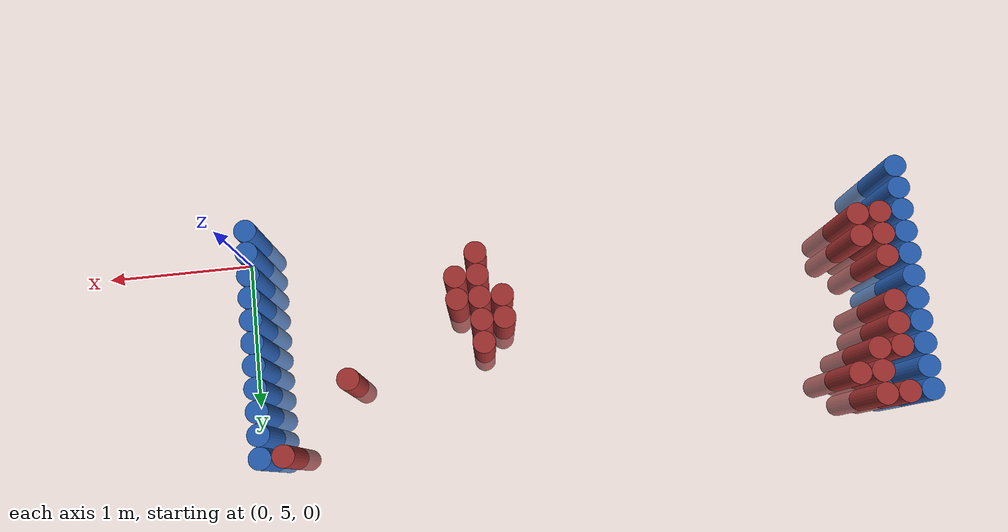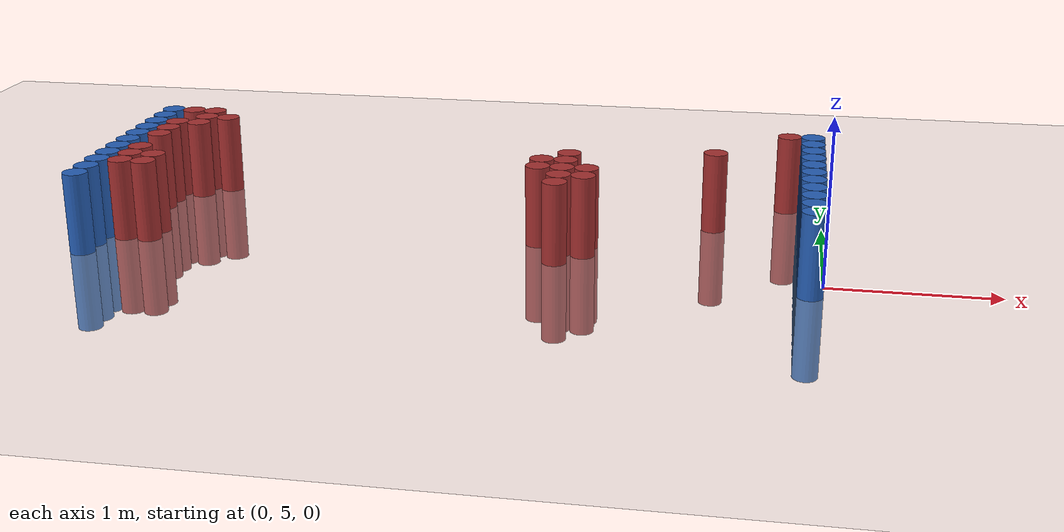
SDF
<sdf version="1.6">
 <world name="default">
  <model name="ground_plane">
   <static>1</static>
   <link name="link">
    <collision name="collision">
     <geometry><plane><normal>0 0 1</normal><size>100 100</size></plane></geometry>
     <surface><friction><ode><mu>100</mu><mu2>50</mu2></ode></friction></surface>
    </collision>
    <visual name="visual">
     <cast_shadows>0</cast_shadows>
     <geometry><plane><normal>0 0 1</normal><size>100 100</size></plane></geometry>
     <material>
      <script><uri>file://media/materials/scripts/gazebo.material</uri><name>Gazebo/Grey</name></script>
     </material>
    </visual>
   </link>
  </model>
  <model name="unit_cylinder_92">
   <static>1</static>
   <pose>-0.075000 4.875000 0.000000 0.000000 0.000000 0.000000</pose>
   <link name="link">
    <inertial>
     <mass>1</mass>
     <inertia><ixx>0.145833</ixx><ixy>0</ixy><ixz>0</ixz><iyy>0.145833</iyy><iyz>0</iyz><izz>0.125</izz></inertia>
    </inertial>
    <collision name="collision">
     <geometry><cylinder><radius>0.075000</radius><length>1</length></cylinder></geometry>
    </collision>
    <visual name="visual">
     <geometry><cylinder><radius>0.075000</radius><length>1</length></cylinder></geometry>
     <material>
      <ambient>0.152000 0.379000 0.720000 1</ambient>
      <diffuse>0.152000 0.379000 0.720000 1</diffuse>
     </material>
     <material>
      <script><name>Gazebo/Grey</name><uri>file://media/materials/scripts/gazebo.material</uri></script>
     </material>
    </visual>
   </link>
  </model>
  <model name="unit_cylinder_93">
   <static>1</static>
   <pose>-4.425000 4.875000 0.000000 0.000000 0.000000 0.000000</pose>
   <link name="link">
    <inertial>
     <mass>1</mass>
     <inertia><ixx>0.145833</ixx><ixy>0</ixy><ixz>0</ixz><iyy>0.145833</iyy><iyz>0</iyz><izz>0.125</izz></inertia>
    </inertial>
    <collision name="collision">
     <geometry><cylinder><radius>0.075000</radius><length>1</length></cylinder></geometry>
    </collision>
    <visual name="visual">
     <geometry><cylinder><radius>0.075000</radius><length>1</length></cylinder></geometry>
     <material>
      <ambient>0.152000 0.379000 0.720000 1</ambient>
      <diffuse>0.152000 0.379000 0.720000 1</diffuse>
     </material>
     <material>
      <script><name>Gazebo/Grey</name><uri>file://media/materials/scripts/gazebo.material</uri></script>
     </material>
    </visual>
   </link>
  </model>
  <model name="unit_cylinder_94">
   <static>1</static>
   <pose>-0.075000 5.025000 0.000000 0.000000 0.000000 0.000000</pose>
   <link name="link">
    <inertial>
     <mass>1</mass>
     <inertia><ixx>0.145833</ixx><ixy>0</ixy><ixz>0</ixz><iyy>0.145833</iyy><iyz>0</iyz><izz>0.125</izz></inertia>
    </inertial>
    <collision name="collision">
     <geometry><cylinder><radius>0.075000</radius><length>1</length></cylinder></geometry>
    </collision>
    <visual name="visual">
     <geometry><cylinder><radius>0.075000</radius><length>1</length></cylinder></geometry>
     <material>
      <ambient>0.152000 0.379000 0.720000 1</ambient>
      <diffuse>0.152000 0.379000 0.720000 1</diffuse>
     </material>
     <material>
      <script><name>Gazebo/Grey</name><uri>file://media/materials/scripts/gazebo.material</uri></script>
     </material>
    </visual>
   </link>
  </model>
  <model name="unit_cylinder_95">
   <static>1</static>
   <pose>-4.425000 5.025000 0.000000 0.000000 0.000000 0.000000</pose>
   <link name="link">
    <inertial>
     <mass>1</mass>
     <inertia><ixx>0.145833</ixx><ixy>0</ixy><ixz>0</ixz><iyy>0.145833</iyy><iyz>0</iyz><izz>0.125</izz></inertia>
    </inertial>
    <collision name="collision">
     <geometry><cylinder><radius>0.075000</radius><length>1</length></cylinder></geometry>
    </collision>
    <visual name="visual">
     <geometry><cylinder><radius>0.075000</radius><length>1</length></cylinder></geometry>
     <material>
      <ambient>0.152000 0.379000 0.720000 1</ambient>
      <diffuse>0.152000 0.379000 0.720000 1</diffuse>
     </material>
     <material>
      <script><name>Gazebo/Grey</name><uri>file://media/materials/scripts/gazebo.material</uri></script>
     </material>
    </visual>
   </link>
  </model>
  <model name="unit_cylinder_96">
   <static>1</static>
   <pose>-4.425000 5.175000 0.000000 0.000000 0.000000 0.000000</pose>
   <link name="link">
    <inertial>
     <mass>1</mass>
     <inertia><ixx>0.145833</ixx><ixy>0</ixy><ixz>0</ixz><iyy>0.145833</iyy><iyz>0</iyz><izz>0.125</izz></inertia>
    </inertial>
    <collision name="collision">
     <geometry><cylinder><radius>0.075000</radius><length>1</length></cylinder></geometry>
    </collision>
    <visual name="visual">
     <geometry><cylinder><radius>0.075000</radius><length>1</length></cylinder></geometry>
     <material>
      <ambient>0.152000 0.379000 0.720000 1</ambient>
      <diffuse>0.152000 0.379000 0.720000 1</diffuse>
     </material>
     <material>
      <script><name>Gazebo/Grey</name><uri>file://media/materials/scripts/gazebo.material</uri></script>
     </material>
    </visual>
   </link>
  </model>
  <model name="unit_cylinder_97">
   <static>1</static>
   <pose>-4.425000 5.325000 0.000000 0.000000 0.000000 0.000000</pose>
   <link name="link">
    <inertial>
     <mass>1</mass>
     <inertia><ixx>0.145833</ixx><ixy>0</ixy><ixz>0</ixz><iyy>0.145833</iyy><iyz>0</iyz><izz>0.125</izz></inertia>
    </inertial>
    <collision name="collision">
     <geometry><cylinder><radius>0.075000</radius><length>1</length></cylinder></geometry>
    </collision>
    <visual name="visual">
     <geometry><cylinder><radius>0.075000</radius><length>1</length></cylinder></geometry>
     <material>
      <ambient>0.152000 0.379000 0.720000 1</ambient>
      <diffuse>0.152000 0.379000 0.720000 1</diffuse>
     </material>
     <material>
      <script><name>Gazebo/Grey</name><uri>file://media/materials/scripts/gazebo.material</uri></script>
     </material>
    </visual>
   </link>
  </model>
  <model name="unit_cylinder_98">
   <static>1</static>
   <pose>-4.425000 5.475000 0.000000 0.000000 0.000000 0.000000</pose>
   <link name="link">
    <inertial>
     <mass>1</mass>
     <inertia><ixx>0.145833</ixx><ixy>0</ixy><ixz>0</ixz><iyy>0.145833</iyy><iyz>0</iyz><izz>0.125</izz></inertia>
    </inertial>
    <collision name="collision">
     <geometry><cylinder><radius>0.075000</radius><length>1</length></cylinder></geometry>
    </collision>
    <visual name="visual">
     <geometry><cylinder><radius>0.075000</radius><length>1</length></cylinder></geometry>
     <material>
      <ambient>0.152000 0.379000 0.720000 1</ambient>
      <diffuse>0.152000 0.379000 0.720000 1</diffuse>
     </material>
     <material>
      <script><name>Gazebo/Grey</name><uri>file://media/materials/scripts/gazebo.material</uri></script>
     </material>
    </visual>
   </link>
  </model>
  <model name="unit_cylinder_99">
   <static>1</static>
   <pose>-4.425000 5.625000 0.000000 0.000000 0.000000 0.000000</pose>
   <link name="link">
    <inertial>
     <mass>1</mass>
     <inertia><ixx>0.145833</ixx><ixy>0</ixy><ixz>0</ixz><iyy>0.145833</iyy><iyz>0</iyz><izz>0.125</izz></inertia>
    </inertial>
    <collision name="collision">
     <geometry><cylinder><radius>0.075000</radius><length>1</length></cylinder></geometry>
    </collision>
    <visual name="visual">
     <geometry><cylinder><radius>0.075000</radius><length>1</length></cylinder></geometry>
     <material>
      <ambient>0.152000 0.379000 0.720000 1</ambient>
      <diffuse>0.152000 0.379000 0.720000 1</diffuse>
     </material>
     <material>
      <script><name>Gazebo/Grey</name><uri>file://media/materials/scripts/gazebo.material</uri></script>
     </material>
    </visual>
   </link>
  </model>
  <model name="unit_cylinder_100">
   <static>1</static>
   <pose>-4.425000 5.775000 0.000000 0.000000 0.000000 0.000000</pose>
   <link name="link">
    <inertial>
     <mass>1</mass>
     <inertia><ixx>0.145833</ixx><ixy>0</ixy><ixz>0</ixz><iyy>0.145833</iyy><iyz>0</iyz><izz>0.125</izz></inertia>
    </inertial>
    <collision name="collision">
     <geometry><cylinder><radius>0.075000</radius><length>1</length></cylinder></geometry>
    </collision>
    <visual name="visual">
     <geometry><cylinder><radius>0.075000</radius><length>1</length></cylinder></geometry>
     <material>
      <ambient>0.152000 0.379000 0.720000 1</ambient>
      <diffuse>0.152000 0.379000 0.720000 1</diffuse>
     </material>
     <material>
      <script><name>Gazebo/Grey</name><uri>file://media/materials/scripts/gazebo.material</uri></script>
     </material>
    </visual>
   </link>
  </model>
  <model name="unit_cylinder_101">
   <static>1</static>
   <pose>-4.425000 5.925000 0.000000 0.000000 0.000000 0.000000</pose>
   <link name="link">
    <inertial>
     <mass>1</mass>
     <inertia><ixx>0.145833</ixx><ixy>0</ixy><ixz>0</ixz><iyy>0.145833</iyy><iyz>0</iyz><izz>0.125</izz></inertia>
    </inertial>
    <collision name="collision">
     <geometry><cylinder><radius>0.075000</radius><length>1</length></cylinder></geometry>
    </collision>
    <visual name="visual">
     <geometry><cylinder><radius>0.075000</radius><length>1</length></cylinder></geometry>
     <material>
      <ambient>0.152000 0.379000 0.720000 1</ambient>
      <diffuse>0.152000 0.379000 0.720000 1</diffuse>
     </material>
     <material>
      <script><name>Gazebo/Grey</name><uri>file://media/materials/scripts/gazebo.material</uri></script>
     </material>
    </visual>
   </link>
  </model>
  <model name="unit_cylinder_102">
   <static>1</static>
   <pose>-4.425000 6.075000 0.000000 0.000000 0.000000 0.000000</pose>
   <link name="link">
    <inertial>
     <mass>1</mass>
     <inertia><ixx>0.145833</ixx><ixy>0</ixy><ixz>0</ixz><iyy>0.145833</iyy><iyz>0</iyz><izz>0.125</izz></inertia>
    </inertial>
    <collision name="collision">
     <geometry><cylinder><radius>0.075000</radius><length>1</length></cylinder></geometry>
    </collision>
    <visual name="visual">
     <geometry><cylinder><radius>0.075000</radius><length>1</length></cylinder></geometry>
     <material>
      <ambient>0.152000 0.379000 0.720000 1</ambient>
      <diffuse>0.152000 0.379000 0.720000 1</diffuse>
     </material>
     <material>
      <script><name>Gazebo/Grey</name><uri>file://media/materials/scripts/gazebo.material</uri></script>
     </material>
    </visual>
   </link>
  </model>
  <model name="unit_cylinder_103">
   <static>1</static>
   <pose>-4.425000 6.225000 0.000000 0.000000 0.000000 0.000000</pose>
   <link name="link">
    <inertial>
     <mass>1</mass>
     <inertia><ixx>0.145833</ixx><ixy>0</ixy><ixz>0</ixz><iyy>0.145833</iyy><iyz>0</iyz><izz>0.125</izz></inertia>
    </inertial>
    <collision name="collision">
     <geometry><cylinder><radius>0.075000</radius><length>1</length></cylinder></geometry>
    </collision>
    <visual name="visual">
     <geometry><cylinder><radius>0.075000</radius><length>1</length></cylinder></geometry>
     <material>
      <ambient>0.152000 0.379000 0.720000 1</ambient>
      <diffuse>0.152000 0.379000 0.720000 1</diffuse>
     </material>
     <material>
      <script><name>Gazebo/Grey</name><uri>file://media/materials/scripts/gazebo.material</uri></script>
     </material>
    </visual>
   </link>
  </model>
  <model name="unit_cylinder_104">
   <static>1</static>
   <pose>-4.425000 6.375000 0.000000 0.000000 0.000000 0.000000</pose>
   <link name="link">
    <inertial>
     <mass>1</mass>
     <inertia><ixx>0.145833</ixx><ixy>0</ixy><ixz>0</ixz><iyy>0.145833</iyy><iyz>0</iyz><izz>0.125</izz></inertia>
    </inertial>
    <collision name="collision">
     <geometry><cylinder><radius>0.075000</radius><length>1</length></cylinder></geometry>
    </collision>
    <visual name="visual">
     <geometry><cylinder><radius>0.075000</radius><length>1</length></cylinder></geometry>
     <material>
      <ambient>0.152000 0.379000 0.720000 1</ambient>
      <diffuse>0.152000 0.379000 0.720000 1</diffuse>
     </material>
     <material>
      <script><name>Gazebo/Grey</name><uri>file://media/materials/scripts/gazebo.material</uri></script>
     </material>
    </visual>
   </link>
  </model>
  <model name="unit_cylinder_126">
   <static>1</static>
   <pose>-4.275000 5.175000 0.000000 0.000000 0.000000 0.000000</pose>
   <link name="link">
    <inertial>
     <mass>1</mass>
     <inertia><ixx>0.145833</ixx><ixy>0</ixy><ixz>0</ixz><iyy>0.145833</iyy><iyz>0</iyz><izz>0.125</izz></inertia>
    </inertial>
    <collision name="collision">
     <geometry><cylinder><radius>0.075000</radius><length>1</length></cylinder></geometry>
    </collision>
    <visual name="visual">
     <geometry><cylinder><radius>0.075000</radius><length>1</length></cylinder></geometry>
     <material>
      <ambient>0.648000 0.192000 0.192000 1</ambient>
      <diffuse>0.648000 0.192000 0.192000 1</diffuse>
     </material>
     <material>
      <script><name>Gazebo/Grey</name><uri>file://media/materials/scripts/gazebo.material</uri></script>
     </material>
    </visual>
   </link>
  </model>
  <model name="unit_cylinder_127">
   <static>1</static>
   <pose>-4.275000 5.325000 0.000000 0.000000 0.000000 0.000000</pose>
   <link name="link">
    <inertial>
     <mass>1</mass>
     <inertia><ixx>0.145833</ixx><ixy>0</ixy><ixz>0</ixz><iyy>0.145833</iyy><iyz>0</iyz><izz>0.125</izz></inertia>
    </inertial>
    <collision name="collision">
     <geometry><cylinder><radius>0.075000</radius><length>1</length></cylinder></geometry>
    </collision>
    <visual name="visual">
     <geometry><cylinder><radius>0.075000</radius><length>1</length></cylinder></geometry>
     <material>
      <ambient>0.648000 0.192000 0.192000 1</ambient>
      <diffuse>0.648000 0.192000 0.192000 1</diffuse>
     </material>
     <material>
      <script><name>Gazebo/Grey</name><uri>file://media/materials/scripts/gazebo.material</uri></script>
     </material>
    </visual>
   </link>
  </model>
  <model name="unit_cylinder_128">
   <static>1</static>
   <pose>-4.275000 5.475000 0.000000 0.000000 0.000000 0.000000</pose>
   <link name="link">
    <inertial>
     <mass>1</mass>
     <inertia><ixx>0.145833</ixx><ixy>0</ixy><ixz>0</ixz><iyy>0.145833</iyy><iyz>0</iyz><izz>0.125</izz></inertia>
    </inertial>
    <collision name="collision">
     <geometry><cylinder><radius>0.075000</radius><length>1</length></cylinder></geometry>
    </collision>
    <visual name="visual">
     <geometry><cylinder><radius>0.075000</radius><length>1</length></cylinder></geometry>
     <material>
      <ambient>0.648000 0.192000 0.192000 1</ambient>
      <diffuse>0.648000 0.192000 0.192000 1</diffuse>
     </material>
     <material>
      <script><name>Gazebo/Grey</name><uri>file://media/materials/scripts/gazebo.material</uri></script>
     </material>
    </visual>
   </link>
  </model>
  <model name="unit_cylinder_129">
   <static>1</static>
   <pose>-4.275000 5.775000 0.000000 0.000000 0.000000 0.000000</pose>
   <link name="link">
    <inertial>
     <mass>1</mass>
     <inertia><ixx>0.145833</ixx><ixy>0</ixy><ixz>0</ixz><iyy>0.145833</iyy><iyz>0</iyz><izz>0.125</izz></inertia>
    </inertial>
    <collision name="collision">
     <geometry><cylinder><radius>0.075000</radius><length>1</length></cylinder></geometry>
    </collision>
    <visual name="visual">
     <geometry><cylinder><radius>0.075000</radius><length>1</length></cylinder></geometry>
     <material>
      <ambient>0.648000 0.192000 0.192000 1</ambient>
      <diffuse>0.648000 0.192000 0.192000 1</diffuse>
     </material>
     <material>
      <script><name>Gazebo/Grey</name><uri>file://media/materials/scripts/gazebo.material</uri></script>
     </material>
    </visual>
   </link>
  </model>
  <model name="unit_cylinder_130">
   <static>1</static>
   <pose>-4.275000 5.925000 0.000000 0.000000 0.000000 0.000000</pose>
   <link name="link">
    <inertial>
     <mass>1</mass>
     <inertia><ixx>0.145833</ixx><ixy>0</ixy><ixz>0</ixz><iyy>0.145833</iyy><iyz>0</iyz><izz>0.125</izz></inertia>
    </inertial>
    <collision name="collision">
     <geometry><cylinder><radius>0.075000</radius><length>1</length></cylinder></geometry>
    </collision>
    <visual name="visual">
     <geometry><cylinder><radius>0.075000</radius><length>1</length></cylinder></geometry>
     <material>
      <ambient>0.648000 0.192000 0.192000 1</ambient>
      <diffuse>0.648000 0.192000 0.192000 1</diffuse>
     </material>
     <material>
      <script><name>Gazebo/Grey</name><uri>file://media/materials/scripts/gazebo.material</uri></script>
     </material>
    </visual>
   </link>
  </model>
  <model name="unit_cylinder_131">
   <static>1</static>
   <pose>-4.275000 6.075000 0.000000 0.000000 0.000000 0.000000</pose>
   <link name="link">
    <inertial>
     <mass>1</mass>
     <inertia><ixx>0.145833</ixx><ixy>0</ixy><ixz>0</ixz><iyy>0.145833</iyy><iyz>0</iyz><izz>0.125</izz></inertia>
    </inertial>
    <collision name="collision">
     <geometry><cylinder><radius>0.075000</radius><length>1</length></cylinder></geometry>
    </collision>
    <visual name="visual">
     <geometry><cylinder><radius>0.075000</radius><length>1</length></cylinder></geometry>
     <material>
      <ambient>0.648000 0.192000 0.192000 1</ambient>
      <diffuse>0.648000 0.192000 0.192000 1</diffuse>
     </material>
     <material>
      <script><name>Gazebo/Grey</name><uri>file://media/materials/scripts/gazebo.material</uri></script>
     </material>
    </visual>
   </link>
  </model>
  <model name="unit_cylinder_132">
   <static>1</static>
   <pose>-4.275000 6.375000 0.000000 0.000000 0.000000 0.000000</pose>
   <link name="link">
    <inertial>
     <mass>1</mass>
     <inertia><ixx>0.145833</ixx><ixy>0</ixy><ixz>0</ixz><iyy>0.145833</iyy><iyz>0</iyz><izz>0.125</izz></inertia>
    </inertial>
    <collision name="collision">
     <geometry><cylinder><radius>0.075000</radius><length>1</length></cylinder></geometry>
    </collision>
    <visual name="visual">
     <geometry><cylinder><radius>0.075000</radius><length>1</length></cylinder></geometry>
     <material>
      <ambient>0.648000 0.192000 0.192000 1</ambient>
      <diffuse>0.648000 0.192000 0.192000 1</diffuse>
     </material>
     <material>
      <script><name>Gazebo/Grey</name><uri>file://media/materials/scripts/gazebo.material</uri></script>
     </material>
    </visual>
   </link>
  </model>
  <model name="unit_cylinder_144">
   <static>1</static>
   <pose>-4.125000 5.175000 0.000000 0.000000 0.000000 0.000000</pose>
   <link name="link">
    <inertial>
     <mass>1</mass>
     <inertia><ixx>0.145833</ixx><ixy>0</ixy><ixz>0</ixz><iyy>0.145833</iyy><iyz>0</iyz><izz>0.125</izz></inertia>
    </inertial>
    <collision name="collision">
     <geometry><cylinder><radius>0.075000</radius><length>1</length></cylinder></geometry>
    </collision>
    <visual name="visual">
     <geometry><cylinder><radius>0.075000</radius><length>1</length></cylinder></geometry>
     <material>
      <ambient>0.648000 0.192000 0.192000 1</ambient>
      <diffuse>0.648000 0.192000 0.192000 1</diffuse>
     </material>
     <material>
      <script><name>Gazebo/Grey</name><uri>file://media/materials/scripts/gazebo.material</uri></script>
     </material>
    </visual>
   </link>
  </model>
  <model name="unit_cylinder_145">
   <static>1</static>
   <pose>-4.125000 5.325000 0.000000 0.000000 0.000000 0.000000</pose>
   <link name="link">
    <inertial>
     <mass>1</mass>
     <inertia><ixx>0.145833</ixx><ixy>0</ixy><ixz>0</ixz><iyy>0.145833</iyy><iyz>0</iyz><izz>0.125</izz></inertia>
    </inertial>
    <collision name="collision">
     <geometry><cylinder><radius>0.075000</radius><length>1</length></cylinder></geometry>
    </collision>
    <visual name="visual">
     <geometry><cylinder><radius>0.075000</radius><length>1</length></cylinder></geometry>
     <material>
      <ambient>0.648000 0.192000 0.192000 1</ambient>
      <diffuse>0.648000 0.192000 0.192000 1</diffuse>
     </material>
     <material>
      <script><name>Gazebo/Grey</name><uri>file://media/materials/scripts/gazebo.material</uri></script>
     </material>
    </visual>
   </link>
  </model>
  <model name="unit_cylinder_146">
   <static>1</static>
   <pose>-4.125000 6.075000 0.000000 0.000000 0.000000 0.000000</pose>
   <link name="link">
    <inertial>
     <mass>1</mass>
     <inertia><ixx>0.145833</ixx><ixy>0</ixy><ixz>0</ixz><iyy>0.145833</iyy><iyz>0</iyz><izz>0.125</izz></inertia>
    </inertial>
    <collision name="collision">
     <geometry><cylinder><radius>0.075000</radius><length>1</length></cylinder></geometry>
    </collision>
    <visual name="visual">
     <geometry><cylinder><radius>0.075000</radius><length>1</length></cylinder></geometry>
     <material>
      <ambient>0.648000 0.192000 0.192000 1</ambient>
      <diffuse>0.648000 0.192000 0.192000 1</diffuse>
     </material>
     <material>
      <script><name>Gazebo/Grey</name><uri>file://media/materials/scripts/gazebo.material</uri></script>
     </material>
    </visual>
   </link>
  </model>
  <model name="unit_cylinder_147">
   <static>1</static>
   <pose>-4.125000 6.225000 0.000000 0.000000 0.000000 0.000000</pose>
   <link name="link">
    <inertial>
     <mass>1</mass>
     <inertia><ixx>0.145833</ixx><ixy>0</ixy><ixz>0</ixz><iyy>0.145833</iyy><iyz>0</iyz><izz>0.125</izz></inertia>
    </inertial>
    <collision name="collision">
     <geometry><cylinder><radius>0.075000</radius><length>1</length></cylinder></geometry>
    </collision>
    <visual name="visual">
     <geometry><cylinder><radius>0.075000</radius><length>1</length></cylinder></geometry>
     <material>
      <ambient>0.648000 0.192000 0.192000 1</ambient>
      <diffuse>0.648000 0.192000 0.192000 1</diffuse>
     </material>
     <material>
      <script><name>Gazebo/Grey</name><uri>file://media/materials/scripts/gazebo.material</uri></script>
     </material>
    </visual>
   </link>
  </model>
  <model name="unit_cylinder_148">
   <static>1</static>
   <pose>-4.125000 6.375000 0.000000 0.000000 0.000000 0.000000</pose>
   <link name="link">
    <inertial>
     <mass>1</mass>
     <inertia><ixx>0.145833</ixx><ixy>0</ixy><ixz>0</ixz><iyy>0.145833</iyy><iyz>0</iyz><izz>0.125</izz></inertia>
    </inertial>
    <collision name="collision">
     <geometry><cylinder><radius>0.075000</radius><length>1</length></cylinder></geometry>
    </collision>
    <visual name="visual">
     <geometry><cylinder><radius>0.075000</radius><length>1</length></cylinder></geometry>
     <material>
      <ambient>0.648000 0.192000 0.192000 1</ambient>
      <diffuse>0.648000 0.192000 0.192000 1</diffuse>
     </material>
     <material>
      <script><name>Gazebo/Grey</name><uri>file://media/materials/scripts/gazebo.material</uri></script>
     </material>
    </visual>
   </link>
  </model>
  <model name="unit_cylinder_152">
   <static>1</static>
   <pose>-3.975000 6.225000 0.000000 0.000000 0.000000 0.000000</pose>
   <link name="link">
    <inertial>
     <mass>1</mass>
     <inertia><ixx>0.145833</ixx><ixy>0</ixy><ixz>0</ixz><iyy>0.145833</iyy><iyz>0</iyz><izz>0.125</izz></inertia>
    </inertial>
    <collision name="collision">
     <geometry><cylinder><radius>0.075000</radius><length>1</length></cylinder></geometry>
    </collision>
    <visual name="visual">
     <geometry><cylinder><radius>0.075000</radius><length>1</length></cylinder></geometry>
     <material>
      <ambient>0.648000 0.192000 0.192000 1</ambient>
      <diffuse>0.648000 0.192000 0.192000 1</diffuse>
     </material>
     <material>
      <script><name>Gazebo/Grey</name><uri>file://media/materials/scripts/gazebo.material</uri></script>
     </material>
    </visual>
   </link>
  </model>
  <model name="unit_cylinder_187">
   <static>1</static>
   <pose>-1.725000 5.475000 0.000000 0.000000 0.000000 0.000000</pose>
   <link name="link">
    <inertial>
     <mass>1</mass>
     <inertia><ixx>0.145833</ixx><ixy>0</ixy><ixz>0</ixz><iyy>0.145833</iyy><iyz>0</iyz><izz>0.125</izz></inertia>
    </inertial>
    <collision name="collision">
     <geometry><cylinder><radius>0.075000</radius><length>1</length></cylinder></geometry>
    </collision>
    <visual name="visual">
     <geometry><cylinder><radius>0.075000</radius><length>1</length></cylinder></geometry>
     <material>
      <ambient>0.648000 0.192000 0.192000 1</ambient>
      <diffuse>0.648000 0.192000 0.192000 1</diffuse>
     </material>
     <material>
      <script><name>Gazebo/Grey</name><uri>file://media/materials/scripts/gazebo.material</uri></script>
     </material>
    </visual>
   </link>
  </model>
  <model name="unit_cylinder_188">
   <static>1</static>
   <pose>-1.725000 5.625000 0.000000 0.000000 0.000000 0.000000</pose>
   <link name="link">
    <inertial>
     <mass>1</mass>
     <inertia><ixx>0.145833</ixx><ixy>0</ixy><ixz>0</ixz><iyy>0.145833</iyy><iyz>0</iyz><izz>0.125</izz></inertia>
    </inertial>
    <collision name="collision">
     <geometry><cylinder><radius>0.075000</radius><length>1</length></cylinder></geometry>
    </collision>
    <visual name="visual">
     <geometry><cylinder><radius>0.075000</radius><length>1</length></cylinder></geometry>
     <material>
      <ambient>0.648000 0.192000 0.192000 1</ambient>
      <diffuse>0.648000 0.192000 0.192000 1</diffuse>
     </material>
     <material>
      <script><name>Gazebo/Grey</name><uri>file://media/materials/scripts/gazebo.material</uri></script>
     </material>
    </visual>
   </link>
  </model>
  <model name="unit_cylinder_190">
   <static>1</static>
   <pose>-1.575000 5.175000 0.000000 0.000000 0.000000 0.000000</pose>
   <link name="link">
    <inertial>
     <mass>1</mass>
     <inertia><ixx>0.145833</ixx><ixy>0</ixy><ixz>0</ixz><iyy>0.145833</iyy><iyz>0</iyz><izz>0.125</izz></inertia>
    </inertial>
    <collision name="collision">
     <geometry><cylinder><radius>0.075000</radius><length>1</length></cylinder></geometry>
    </collision>
    <visual name="visual">
     <geometry><cylinder><radius>0.075000</radius><length>1</length></cylinder></geometry>
     <material>
      <ambient>0.648000 0.192000 0.192000 1</ambient>
      <diffuse>0.648000 0.192000 0.192000 1</diffuse>
     </material>
     <material>
      <script><name>Gazebo/Grey</name><uri>file://media/materials/scripts/gazebo.material</uri></script>
     </material>
    </visual>
   </link>
  </model>
  <model name="unit_cylinder_191">
   <static>1</static>
   <pose>-1.575000 5.325000 0.000000 0.000000 0.000000 0.000000</pose>
   <link name="link">
    <inertial>
     <mass>1</mass>
     <inertia><ixx>0.145833</ixx><ixy>0</ixy><ixz>0</ixz><iyy>0.145833</iyy><iyz>0</iyz><izz>0.125</izz></inertia>
    </inertial>
    <collision name="collision">
     <geometry><cylinder><radius>0.075000</radius><length>1</length></cylinder></geometry>
    </collision>
    <visual name="visual">
     <geometry><cylinder><radius>0.075000</radius><length>1</length></cylinder></geometry>
     <material>
      <ambient>0.648000 0.192000 0.192000 1</ambient>
      <diffuse>0.648000 0.192000 0.192000 1</diffuse>
     </material>
     <material>
      <script><name>Gazebo/Grey</name><uri>file://media/materials/scripts/gazebo.material</uri></script>
     </material>
    </visual>
   </link>
  </model>
  <model name="unit_cylinder_192">
   <static>1</static>
   <pose>-1.575000 5.475000 0.000000 0.000000 0.000000 0.000000</pose>
   <link name="link">
    <inertial>
     <mass>1</mass>
     <inertia><ixx>0.145833</ixx><ixy>0</ixy><ixz>0</ixz><iyy>0.145833</iyy><iyz>0</iyz><izz>0.125</izz></inertia>
    </inertial>
    <collision name="collision">
     <geometry><cylinder><radius>0.075000</radius><length>1</length></cylinder></geometry>
    </collision>
    <visual name="visual">
     <geometry><cylinder><radius>0.075000</radius><length>1</length></cylinder></geometry>
     <material>
      <ambient>0.648000 0.192000 0.192000 1</ambient>
      <diffuse>0.648000 0.192000 0.192000 1</diffuse>
     </material>
     <material>
      <script><name>Gazebo/Grey</name><uri>file://media/materials/scripts/gazebo.material</uri></script>
     </material>
    </visual>
   </link>
  </model>
  <model name="unit_cylinder_193">
   <static>1</static>
   <pose>-1.575000 5.625000 0.000000 0.000000 0.000000 0.000000</pose>
   <link name="link">
    <inertial>
     <mass>1</mass>
     <inertia><ixx>0.145833</ixx><ixy>0</ixy><ixz>0</ixz><iyy>0.145833</iyy><iyz>0</iyz><izz>0.125</izz></inertia>
    </inertial>
    <collision name="collision">
     <geometry><cylinder><radius>0.075000</radius><length>1</length></cylinder></geometry>
    </collision>
    <visual name="visual">
     <geometry><cylinder><radius>0.075000</radius><length>1</length></cylinder></geometry>
     <material>
      <ambient>0.648000 0.192000 0.192000 1</ambient>
      <diffuse>0.648000 0.192000 0.192000 1</diffuse>
     </material>
     <material>
      <script><name>Gazebo/Grey</name><uri>file://media/materials/scripts/gazebo.material</uri></script>
     </material>
    </visual>
   </link>
  </model>
  <model name="unit_cylinder_194">
   <static>1</static>
   <pose>-1.575000 5.775000 0.000000 0.000000 0.000000 0.000000</pose>
   <link name="link">
    <inertial>
     <mass>1</mass>
     <inertia><ixx>0.145833</ixx><ixy>0</ixy><ixz>0</ixz><iyy>0.145833</iyy><iyz>0</iyz><izz>0.125</izz></inertia>
    </inertial>
    <collision name="collision">
     <geometry><cylinder><radius>0.075000</radius><length>1</length></cylinder></geometry>
    </collision>
    <visual name="visual">
     <geometry><cylinder><radius>0.075000</radius><length>1</length></cylinder></geometry>
     <material>
      <ambient>0.648000 0.192000 0.192000 1</ambient>
      <diffuse>0.648000 0.192000 0.192000 1</diffuse>
     </material>
     <material>
      <script><name>Gazebo/Grey</name><uri>file://media/materials/scripts/gazebo.material</uri></script>
     </material>
    </visual>
   </link>
  </model>
  <model name="unit_cylinder_197">
   <static>1</static>
   <pose>-1.425000 5.325000 0.000000 0.000000 0.000000 0.000000</pose>
   <link name="link">
    <inertial>
     <mass>1</mass>
     <inertia><ixx>0.145833</ixx><ixy>0</ixy><ixz>0</ixz><iyy>0.145833</iyy><iyz>0</iyz><izz>0.125</izz></inertia>
    </inertial>
    <collision name="collision">
     <geometry><cylinder><radius>0.075000</radius><length>1</length></cylinder></geometry>
    </collision>
    <visual name="visual">
     <geometry><cylinder><radius>0.075000</radius><length>1</length></cylinder></geometry>
     <material>
      <ambient>0.648000 0.192000 0.192000 1</ambient>
      <diffuse>0.648000 0.192000 0.192000 1</diffuse>
     </material>
     <material>
      <script><name>Gazebo/Grey</name><uri>file://media/materials/scripts/gazebo.material</uri></script>
     </material>
    </visual>
   </link>
  </model>
  <model name="unit_cylinder_198">
   <static>1</static>
   <pose>-1.425000 5.475000 0.000000 0.000000 0.000000 0.000000</pose>
   <link name="link">
    <inertial>
     <mass>1</mass>
     <inertia><ixx>0.145833</ixx><ixy>0</ixy><ixz>0</ixz><iyy>0.145833</iyy><iyz>0</iyz><izz>0.125</izz></inertia>
    </inertial>
    <collision name="collision">
     <geometry><cylinder><radius>0.075000</radius><length>1</length></cylinder></geometry>
    </collision>
    <visual name="visual">
     <geometry><cylinder><radius>0.075000</radius><length>1</length></cylinder></geometry>
     <material>
      <ambient>0.648000 0.192000 0.192000 1</ambient>
      <diffuse>0.648000 0.192000 0.192000 1</diffuse>
     </material>
     <material>
      <script><name>Gazebo/Grey</name><uri>file://media/materials/scripts/gazebo.material</uri></script>
     </material>
    </visual>
   </link>
  </model>
  <model name="unit_cylinder_217">
   <static>1</static>
   <pose>-0.675000 5.925000 0.000000 0.000000 0.000000 0.000000</pose>
   <link name="link">
    <inertial>
     <mass>1</mass>
     <inertia><ixx>0.145833</ixx><ixy>0</ixy><ixz>0</ixz><iyy>0.145833</iyy><iyz>0</iyz><izz>0.125</izz></inertia>
    </inertial>
    <collision name="collision">
     <geometry><cylinder><radius>0.075000</radius><length>1</length></cylinder></geometry>
    </collision>
    <visual name="visual">
     <geometry><cylinder><radius>0.075000</radius><length>1</length></cylinder></geometry>
     <material>
      <ambient>0.648000 0.192000 0.192000 1</ambient>
      <diffuse>0.648000 0.192000 0.192000 1</diffuse>
     </material>
     <material>
      <script><name>Gazebo/Grey</name><uri>file://media/materials/scripts/gazebo.material</uri></script>
     </material>
    </visual>
   </link>
  </model>
  <model name="unit_cylinder_228">
   <static>1</static>
   <pose>-0.225000 6.375000 0.000000 0.000000 0.000000 0.000000</pose>
   <link name="link">
    <inertial>
     <mass>1</mass>
     <inertia><ixx>0.145833</ixx><ixy>0</ixy><ixz>0</ixz><iyy>0.145833</iyy><iyz>0</iyz><izz>0.125</izz></inertia>
    </inertial>
    <collision name="collision">
     <geometry><cylinder><radius>0.075000</radius><length>1</length></cylinder></geometry>
    </collision>
    <visual name="visual">
     <geometry><cylinder><radius>0.075000</radius><length>1</length></cylinder></geometry>
     <material>
      <ambient>0.648000 0.192000 0.192000 1</ambient>
      <diffuse>0.648000 0.192000 0.192000 1</diffuse>
     </material>
     <material>
      <script><name>Gazebo/Grey</name><uri>file://media/materials/scripts/gazebo.material</uri></script>
     </material>
    </visual>
   </link>
  </model>
  <model name="unit_cylinder_246">
   <static>1</static>
   <pose>-0.075000 5.175000 0.000000 0.000000 0.000000 0.000000</pose>
   <link name="link">
    <inertial>
     <mass>1</mass>
     <inertia><ixx>0.145833</ixx><ixy>0</ixy><ixz>0</ixz><iyy>0.145833</iyy><iyz>0</iyz><izz>0.125</izz></inertia>
    </inertial>
    <collision name="collision">
     <geometry><cylinder><radius>0.075000</radius><length>1</length></cylinder></geometry>
    </collision>
    <visual name="visual">
     <geometry><cylinder><radius>0.075000</radius><length>1</length></cylinder></geometry>
     <material>
      <ambient>0.152000 0.379000 0.720000 1</ambient>
      <diffuse>0.152000 0.379000 0.720000 1</diffuse>
     </material>
     <material>
      <script><name>Gazebo/Grey</name><uri>file://media/materials/scripts/gazebo.material</uri></script>
     </material>
    </visual>
   </link>
  </model>
  <model name="unit_cylinder_247">
   <static>1</static>
   <pose>-0.075000 5.325000 0.000000 0.000000 0.000000 0.000000</pose>
   <link name="link">
    <inertial>
     <mass>1</mass>
     <inertia><ixx>0.145833</ixx><ixy>0</ixy><ixz>0</ixz><iyy>0.145833</iyy><iyz>0</iyz><izz>0.125</izz></inertia>
    </inertial>
    <collision name="collision">
     <geometry><cylinder><radius>0.075000</radius><length>1</length></cylinder></geometry>
    </collision>
    <visual name="visual">
     <geometry><cylinder><radius>0.075000</radius><length>1</length></cylinder></geometry>
     <material>
      <ambient>0.152000 0.379000 0.720000 1</ambient>
      <diffuse>0.152000 0.379000 0.720000 1</diffuse>
     </material>
     <material>
      <script><name>Gazebo/Grey</name><uri>file://media/materials/scripts/gazebo.material</uri></script>
     </material>
    </visual>
   </link>
  </model>
  <model name="unit_cylinder_248">
   <static>1</static>
   <pose>-0.075000 5.475000 0.000000 0.000000 0.000000 0.000000</pose>
   <link name="link">
    <inertial>
     <mass>1</mass>
     <inertia><ixx>0.145833</ixx><ixy>0</ixy><ixz>0</ixz><iyy>0.145833</iyy><iyz>0</iyz><izz>0.125</izz></inertia>
    </inertial>
    <collision name="collision">
     <geometry><cylinder><radius>0.075000</radius><length>1</length></cylinder></geometry>
    </collision>
    <visual name="visual">
     <geometry><cylinder><radius>0.075000</radius><length>1</length></cylinder></geometry>
     <material>
      <ambient>0.152000 0.379000 0.720000 1</ambient>
      <diffuse>0.152000 0.379000 0.720000 1</diffuse>
     </material>
     <material>
      <script><name>Gazebo/Grey</name><uri>file://media/materials/scripts/gazebo.material</uri></script>
     </material>
    </visual>
   </link>
  </model>
  <model name="unit_cylinder_249">
   <static>1</static>
   <pose>-0.075000 5.625000 0.000000 0.000000 0.000000 0.000000</pose>
   <link name="link">
    <inertial>
     <mass>1</mass>
     <inertia><ixx>0.145833</ixx><ixy>0</ixy><ixz>0</ixz><iyy>0.145833</iyy><iyz>0</iyz><izz>0.125</izz></inertia>
    </inertial>
    <collision name="collision">
     <geometry><cylinder><radius>0.075000</radius><length>1</length></cylinder></geometry>
    </collision>
    <visual name="visual">
     <geometry><cylinder><radius>0.075000</radius><length>1</length></cylinder></geometry>
     <material>
      <ambient>0.152000 0.379000 0.720000 1</ambient>
      <diffuse>0.152000 0.379000 0.720000 1</diffuse>
     </material>
     <material>
      <script><name>Gazebo/Grey</name><uri>file://media/materials/scripts/gazebo.material</uri></script>
     </material>
    </visual>
   </link>
  </model>
  <model name="unit_cylinder_250">
   <static>1</static>
   <pose>-0.075000 5.775000 0.000000 0.000000 0.000000 0.000000</pose>
   <link name="link">
    <inertial>
     <mass>1</mass>
     <inertia><ixx>0.145833</ixx><ixy>0</ixy><ixz>0</ixz><iyy>0.145833</iyy><iyz>0</iyz><izz>0.125</izz></inertia>
    </inertial>
    <collision name="collision">
     <geometry><cylinder><radius>0.075000</radius><length>1</length></cylinder></geometry>
    </collision>
    <visual name="visual">
     <geometry><cylinder><radius>0.075000</radius><length>1</length></cylinder></geometry>
     <material>
      <ambient>0.152000 0.379000 0.720000 1</ambient>
      <diffuse>0.152000 0.379000 0.720000 1</diffuse>
     </material>
     <material>
      <script><name>Gazebo/Grey</name><uri>file://media/materials/scripts/gazebo.material</uri></script>
     </material>
    </visual>
   </link>
  </model>
  <model name="unit_cylinder_251">
   <static>1</static>
   <pose>-0.075000 5.925000 0.000000 0.000000 0.000000 0.000000</pose>
   <link name="link">
    <inertial>
     <mass>1</mass>
     <inertia><ixx>0.145833</ixx><ixy>0</ixy><ixz>0</ixz><iyy>0.145833</iyy><iyz>0</iyz><izz>0.125</izz></inertia>
    </inertial>
    <collision name="collision">
     <geometry><cylinder><radius>0.075000</radius><length>1</length></cylinder></geometry>
    </collision>
    <visual name="visual">
     <geometry><cylinder><radius>0.075000</radius><length>1</length></cylinder></geometry>
     <material>
      <ambient>0.152000 0.379000 0.720000 1</ambient>
      <diffuse>0.152000 0.379000 0.720000 1</diffuse>
     </material>
     <material>
      <script><name>Gazebo/Grey</name><uri>file://media/materials/scripts/gazebo.material</uri></script>
     </material>
    </visual>
   </link>
  </model>
  <model name="unit_cylinder_252">
   <static>1</static>
   <pose>-0.075000 6.075000 0.000000 0.000000 0.000000 0.000000</pose>
   <link name="link">
    <inertial>
     <mass>1</mass>
     <inertia><ixx>0.145833</ixx><ixy>0</ixy><ixz>0</ixz><iyy>0.145833</iyy><iyz>0</iyz><izz>0.125</izz></inertia>
    </inertial>
    <collision name="collision">
     <geometry><cylinder><radius>0.075000</radius><length>1</length></cylinder></geometry>
    </collision>
    <visual name="visual">
     <geometry><cylinder><radius>0.075000</radius><length>1</length></cylinder></geometry>
     <material>
      <ambient>0.152000 0.379000 0.720000 1</ambient>
      <diffuse>0.152000 0.379000 0.720000 1</diffuse>
     </material>
     <material>
      <script><name>Gazebo/Grey</name><uri>file://media/materials/scripts/gazebo.material</uri></script>
     </material>
    </visual>
   </link>
  </model>
  <model name="unit_cylinder_253">
   <static>1</static>
   <pose>-0.075000 6.225000 0.000000 0.000000 0.000000 0.000000</pose>
   <link name="link">
    <inertial>
     <mass>1</mass>
     <inertia><ixx>0.145833</ixx><ixy>0</ixy><ixz>0</ixz><iyy>0.145833</iyy><iyz>0</iyz><izz>0.125</izz></inertia>
    </inertial>
    <collision name="collision">
     <geometry><cylinder><radius>0.075000</radius><length>1</length></cylinder></geometry>
    </collision>
    <visual name="visual">
     <geometry><cylinder><radius>0.075000</radius><length>1</length></cylinder></geometry>
     <material>
      <ambient>0.152000 0.379000 0.720000 1</ambient>
      <diffuse>0.152000 0.379000 0.720000 1</diffuse>
     </material>
     <material>
      <script><name>Gazebo/Grey</name><uri>file://media/materials/scripts/gazebo.material</uri></script>
     </material>
    </visual>
   </link>
  </model>
  <model name="unit_cylinder_254">
   <static>1</static>
   <pose>-0.075000 6.375000 0.000000 0.000000 0.000000 0.000000</pose>
   <link name="link">
    <inertial>
     <mass>1</mass>
     <inertia><ixx>0.145833</ixx><ixy>0</ixy><ixz>0</ixz><iyy>0.145833</iyy><iyz>0</iyz><izz>0.125</izz></inertia>
    </inertial>
    <collision name="collision">
     <geometry><cylinder><radius>0.075000</radius><length>1</length></cylinder></geometry>
    </collision>
    <visual name="visual">
     <geometry><cylinder><radius>0.075000</radius><length>1</length></cylinder></geometry>
     <material>
      <ambient>0.152000 0.379000 0.720000 1</ambient>
      <diffuse>0.152000 0.379000 0.720000 1</diffuse>
     </material>
     <material>
      <script><name>Gazebo/Grey</name><uri>file://media/materials/scripts/gazebo.material</uri></script>
     </material>
    </visual>
   </link>
  </model>
 </world>
</sdf>
